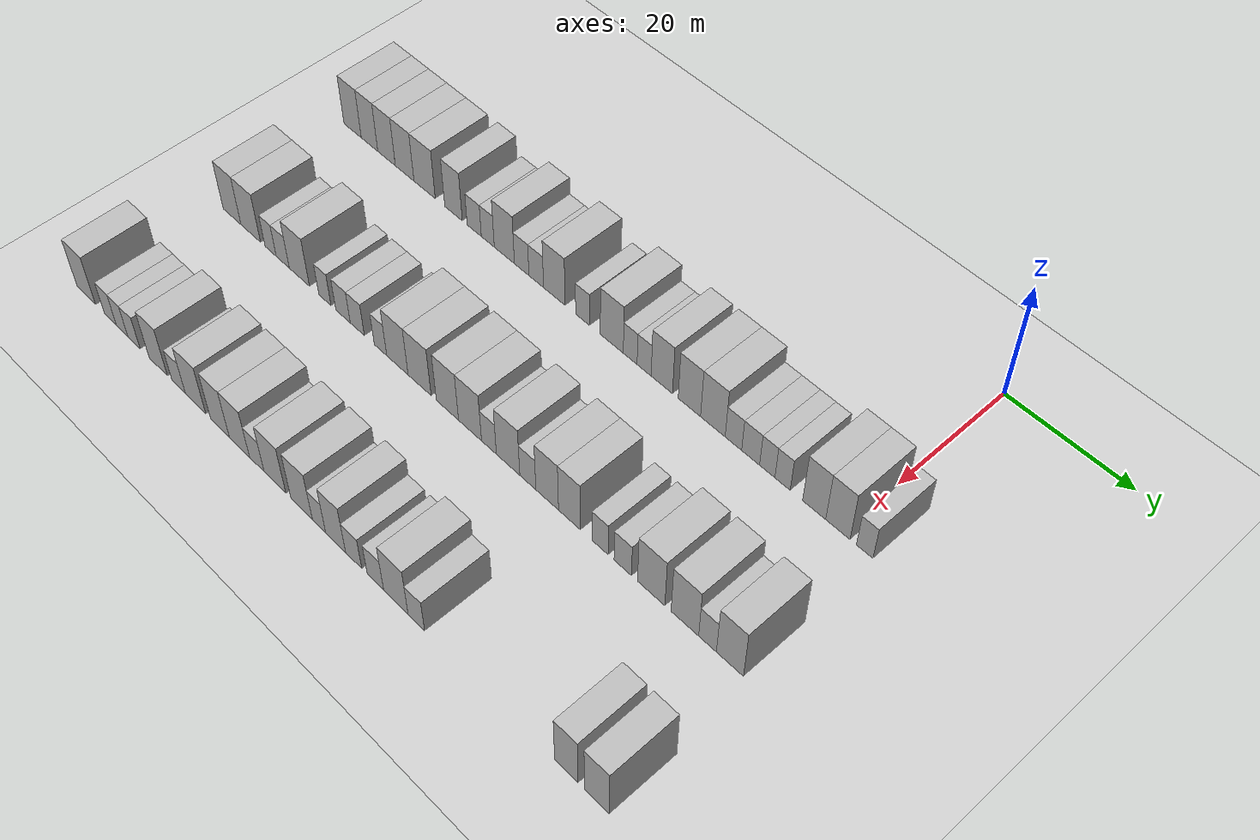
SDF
<sdf version="1.6">
 <world name="default">
  <include><name>ground_plane_1</name><uri>model://HANNAS_ground_plane</uri></include>
  <model name="building_63">
   <static>1</static>
   <pose>25.0000 -91.5826 0 0.000000 0.000000 0.000000</pose>
   <link name="link">
    <pose>0 0 4.50 0 0 0</pose>
    <collision name="collision"><geometry><box><size>10.0000 3.8632 9.0000</size></box></geometry></collision>
    <visual name="visual">
     <cast_shadows>0</cast_shadows>
     <geometry><box><size>10.0000 3.8632 9.0000</size></box></geometry>
     <material>
      <script>
       <uri>model://HANNAS_wall/materials/scripts</uri>
       <uri>model://HANNAS_wall/materials/textures</uri>
       <name>vrc/HANNAS_wall</name>
      </script>
     </material>
    </visual>
   </link>
  </model>
  <model name="building_64">
   <static>1</static>
   <pose>25.0000 -87.8321 0 0.000000 0.000000 0.000000</pose>
   <link name="link">
    <pose>0 0 4.50 0 0 0</pose>
    <collision name="collision"><geometry><box><size>10.0000 3.6378 9.0000</size></box></geometry></collision>
    <visual name="visual">
     <cast_shadows>0</cast_shadows>
     <geometry><box><size>10.0000 3.6378 9.0000</size></box></geometry>
     <material>
      <script>
       <uri>model://HANNAS_wall/materials/scripts</uri>
       <uri>model://HANNAS_wall/materials/textures</uri>
       <name>vrc/HANNAS_wall</name>
      </script>
     </material>
    </visual>
   </link>
  </model>
  <model name="building_65">
   <static>1</static>
   <pose>25.0000 -84.1062 0 0.000000 0.000000 0.000000</pose>
   <link name="link">
    <pose>0 0 4.50 0 0 0</pose>
    <collision name="collision"><geometry><box><size>10.0000 3.8140 9.0000</size></box></geometry></collision>
    <visual name="visual">
     <cast_shadows>0</cast_shadows>
     <geometry><box><size>10.0000 3.8140 9.0000</size></box></geometry>
     <material>
      <script>
       <uri>model://HANNAS_wall/materials/scripts</uri>
       <uri>model://HANNAS_wall/materials/textures</uri>
       <name>vrc/HANNAS_wall</name>
      </script>
     </material>
    </visual>
   </link>
  </model>
  <model name="building_66">
   <static>1</static>
   <pose>25.0000 -80.2050 0 0.000000 0.000000 0.000000</pose>
   <link name="link">
    <pose>0 0 4.50 0 0 0</pose>
    <collision name="collision"><geometry><box><size>10.0000 3.9883 9.0000</size></box></geometry></collision>
    <visual name="visual">
     <cast_shadows>0</cast_shadows>
     <geometry><box><size>10.0000 3.9883 9.0000</size></box></geometry>
     <material>
      <script>
       <uri>model://HANNAS_wall/materials/scripts</uri>
       <uri>model://HANNAS_wall/materials/textures</uri>
       <name>vrc/HANNAS_wall</name>
      </script>
     </material>
    </visual>
   </link>
  </model>
  <model name="building_67">
   <static>1</static>
   <pose>25.0000 -75.9671 0 0.000000 0.000000 0.000000</pose>
   <link name="link">
    <pose>0 0 4.50 0 0 0</pose>
    <collision name="collision"><geometry><box><size>10.0000 4.4875 9.0000</size></box></geometry></collision>
    <visual name="visual">
     <cast_shadows>0</cast_shadows>
     <geometry><box><size>10.0000 4.4875 9.0000</size></box></geometry>
     <material>
      <script>
       <uri>model://HANNAS_wall/materials/scripts</uri>
       <uri>model://HANNAS_wall/materials/textures</uri>
       <name>vrc/HANNAS_wall</name>
      </script>
     </material>
    </visual>
   </link>
  </model>
  <model name="building_68">
   <static>1</static>
   <pose>25.0000 -69.9114 0 0.000000 0.000000 0.000000</pose>
   <link name="link">
    <pose>0 0 4.50 0 0 0</pose>
    <collision name="collision"><geometry><box><size>10.0000 3.6240 9.0000</size></box></geometry></collision>
    <visual name="visual">
     <cast_shadows>0</cast_shadows>
     <geometry><box><size>10.0000 3.6240 9.0000</size></box></geometry>
     <material>
      <script>
       <uri>model://HANNAS_wall/materials/scripts</uri>
       <uri>model://HANNAS_wall/materials/textures</uri>
       <name>vrc/HANNAS_wall</name>
      </script>
     </material>
    </visual>
   </link>
  </model>
  <model name="building_69">
   <static>1</static>
   <pose>25.0000 -65.6644 0 0.000000 0.000000 0.000000</pose>
   <link name="link">
    <pose>0 0 3.00 0 0 0</pose>
    <collision name="collision"><geometry><box><size>10.0000 2.8700 6.0000</size></box></geometry></collision>
    <visual name="visual">
     <cast_shadows>0</cast_shadows>
     <geometry><box><size>10.0000 2.8700 6.0000</size></box></geometry>
     <material>
      <script>
       <uri>model://HANNAS_wall/materials/scripts</uri>
       <uri>model://HANNAS_wall/materials/textures</uri>
       <name>vrc/HANNAS_wall</name>
      </script>
     </material>
    </visual>
   </link>
  </model>
  <model name="building_70">
   <static>1</static>
   <pose>25.0000 -62.9235 0 0.000000 0.000000 0.000000</pose>
   <link name="link">
    <pose>0 0 3.00 0 0 0</pose>
    <collision name="collision"><geometry><box><size>10.0000 2.6117 6.0000</size></box></geometry></collision>
    <visual name="visual">
     <cast_shadows>0</cast_shadows>
     <geometry><box><size>10.0000 2.6117 6.0000</size></box></geometry>
     <material>
      <script>
       <uri>model://HANNAS_wall/materials/scripts</uri>
       <uri>model://HANNAS_wall/materials/textures</uri>
       <name>vrc/HANNAS_wall</name>
      </script>
     </material>
    </visual>
   </link>
  </model>
  <model name="building_71">
   <static>1</static>
   <pose>25.0000 -59.6170 0 0.000000 0.000000 0.000000</pose>
   <link name="link">
    <pose>0 0 4.50 0 0 0</pose>
    <collision name="collision"><geometry><box><size>10.0000 4.0014 9.0000</size></box></geometry></collision>
    <visual name="visual">
     <cast_shadows>0</cast_shadows>
     <geometry><box><size>10.0000 4.0014 9.0000</size></box></geometry>
     <material>
      <script>
       <uri>model://HANNAS_wall/materials/scripts</uri>
       <uri>model://HANNAS_wall/materials/textures</uri>
       <name>vrc/HANNAS_wall</name>
      </script>
     </material>
    </visual>
   </link>
  </model>
  <model name="building_72">
   <static>1</static>
   <pose>25.0000 -56.1926 0 0.000000 0.000000 0.000000</pose>
   <link name="link">
    <pose>0 0 3.00 0 0 0</pose>
    <collision name="collision"><geometry><box><size>10.0000 2.8475 6.0000</size></box></geometry></collision>
    <visual name="visual">
     <cast_shadows>0</cast_shadows>
     <geometry><box><size>10.0000 2.8475 6.0000</size></box></geometry>
     <material>
      <script>
       <uri>model://HANNAS_wall/materials/scripts</uri>
       <uri>model://HANNAS_wall/materials/textures</uri>
       <name>vrc/HANNAS_wall</name>
      </script>
     </material>
    </visual>
   </link>
  </model>
  <model name="building_73">
   <static>1</static>
   <pose>25.0000 -53.3509 0 0.000000 0.000000 0.000000</pose>
   <link name="link">
    <pose>0 0 3.00 0 0 0</pose>
    <collision name="collision"><geometry><box><size>10.0000 2.8359 6.0000</size></box></geometry></collision>
    <visual name="visual">
     <cast_shadows>0</cast_shadows>
     <geometry><box><size>10.0000 2.8359 6.0000</size></box></geometry>
     <material>
      <script>
       <uri>model://HANNAS_wall/materials/scripts</uri>
       <uri>model://HANNAS_wall/materials/textures</uri>
       <name>vrc/HANNAS_wall</name>
      </script>
     </material>
    </visual>
   </link>
  </model>
  <model name="building_74">
   <static>1</static>
   <pose>25.0000 -49.8692 0 0.000000 0.000000 0.000000</pose>
   <link name="link">
    <pose>0 0 4.50 0 0 0</pose>
    <collision name="collision"><geometry><box><size>10.0000 4.1274 9.0000</size></box></geometry></collision>
    <visual name="visual">
     <cast_shadows>0</cast_shadows>
     <geometry><box><size>10.0000 4.1274 9.0000</size></box></geometry>
     <material>
      <script>
       <uri>model://HANNAS_wall/materials/scripts</uri>
       <uri>model://HANNAS_wall/materials/textures</uri>
       <name>vrc/HANNAS_wall</name>
      </script>
     </material>
    </visual>
   </link>
  </model>
  <model name="building_75">
   <static>1</static>
   <pose>25.0000 -44.5020 0 0.000000 0.000000 0.000000</pose>
   <link name="link">
    <pose>0 0 3.00 0 0 0</pose>
    <collision name="collision"><geometry><box><size>10.0000 2.6070 6.0000</size></box></geometry></collision>
    <visual name="visual">
     <cast_shadows>0</cast_shadows>
     <geometry><box><size>10.0000 2.6070 6.0000</size></box></geometry>
     <material>
      <script>
       <uri>model://HANNAS_wall/materials/scripts</uri>
       <uri>model://HANNAS_wall/materials/textures</uri>
       <name>vrc/HANNAS_wall</name>
      </script>
     </material>
    </visual>
   </link>
  </model>
  <model name="building_76">
   <static>1</static>
   <pose>25.0000 -39.0857 0 0.000000 0.000000 0.000000</pose>
   <link name="link">
    <pose>0 0 4.50 0 0 0</pose>
    <collision name="collision"><geometry><box><size>10.0000 4.2257 9.0000</size></box></geometry></collision>
    <visual name="visual">
     <cast_shadows>0</cast_shadows>
     <geometry><box><size>10.0000 4.2257 9.0000</size></box></geometry>
     <material>
      <script>
       <uri>model://HANNAS_wall/materials/scripts</uri>
       <uri>model://HANNAS_wall/materials/textures</uri>
       <name>vrc/HANNAS_wall</name>
      </script>
     </material>
    </visual>
   </link>
  </model>
  <model name="building_77">
   <static>1</static>
   <pose>25.0000 -35.7250 0 0.000000 0.000000 0.000000</pose>
   <link name="link">
    <pose>0 0 3.00 0 0 0</pose>
    <collision name="collision"><geometry><box><size>10.0000 2.4957 6.0000</size></box></geometry></collision>
    <visual name="visual">
     <cast_shadows>0</cast_shadows>
     <geometry><box><size>10.0000 2.4957 6.0000</size></box></geometry>
     <material>
      <script>
       <uri>model://HANNAS_wall/materials/scripts</uri>
       <uri>model://HANNAS_wall/materials/textures</uri>
       <name>vrc/HANNAS_wall</name>
      </script>
     </material>
    </visual>
   </link>
  </model>
  <model name="building_78">
   <static>1</static>
   <pose>25.0000 -33.2164 0 0.000000 0.000000 0.000000</pose>
   <link name="link">
    <pose>0 0 3.00 0 0 0</pose>
    <collision name="collision"><geometry><box><size>10.0000 2.5214 6.0000</size></box></geometry></collision>
    <visual name="visual">
     <cast_shadows>0</cast_shadows>
     <geometry><box><size>10.0000 2.5214 6.0000</size></box></geometry>
     <material>
      <script>
       <uri>model://HANNAS_wall/materials/scripts</uri>
       <uri>model://HANNAS_wall/materials/textures</uri>
       <name>vrc/HANNAS_wall</name>
      </script>
     </material>
    </visual>
   </link>
  </model>
  <model name="building_79">
   <static>1</static>
   <pose>25.0000 -30.0578 0 0.000000 0.000000 0.000000</pose>
   <link name="link">
    <pose>0 0 4.50 0 0 0</pose>
    <collision name="collision"><geometry><box><size>10.0000 3.7959 9.0000</size></box></geometry></collision>
    <visual name="visual">
     <cast_shadows>0</cast_shadows>
     <geometry><box><size>10.0000 3.7959 9.0000</size></box></geometry>
     <material>
      <script>
       <uri>model://HANNAS_wall/materials/scripts</uri>
       <uri>model://HANNAS_wall/materials/textures</uri>
       <name>vrc/HANNAS_wall</name>
      </script>
     </material>
    </visual>
   </link>
  </model>
  <model name="building_80">
   <static>1</static>
   <pose>25.0000 -25.2141 0 0.000000 0.000000 0.000000</pose>
   <link name="link">
    <pose>0 0 4.50 0 0 0</pose>
    <collision name="collision"><geometry><box><size>10.0000 3.8916 9.0000</size></box></geometry></collision>
    <visual name="visual">
     <cast_shadows>0</cast_shadows>
     <geometry><box><size>10.0000 3.8916 9.0000</size></box></geometry>
     <material>
      <script>
       <uri>model://HANNAS_wall/materials/scripts</uri>
       <uri>model://HANNAS_wall/materials/textures</uri>
       <name>vrc/HANNAS_wall</name>
      </script>
     </material>
    </visual>
   </link>
  </model>
  <model name="building_81">
   <static>1</static>
   <pose>25.0000 -21.1624 0 0.000000 0.000000 0.000000</pose>
   <link name="link">
    <pose>0 0 4.50 0 0 0</pose>
    <collision name="collision"><geometry><box><size>10.0000 4.2118 9.0000</size></box></geometry></collision>
    <visual name="visual">
     <cast_shadows>0</cast_shadows>
     <geometry><box><size>10.0000 4.2118 9.0000</size></box></geometry>
     <material>
      <script>
       <uri>model://HANNAS_wall/materials/scripts</uri>
       <uri>model://HANNAS_wall/materials/textures</uri>
       <name>vrc/HANNAS_wall</name>
      </script>
     </material>
    </visual>
   </link>
  </model>
  <model name="building_82">
   <static>1</static>
   <pose>25.0000 -17.6665 0 0.000000 0.000000 0.000000</pose>
   <link name="link">
    <pose>0 0 3.00 0 0 0</pose>
    <collision name="collision"><geometry><box><size>10.0000 2.7800 6.0000</size></box></geometry></collision>
    <visual name="visual">
     <cast_shadows>0</cast_shadows>
     <geometry><box><size>10.0000 2.7800 6.0000</size></box></geometry>
     <material>
      <script>
       <uri>model://HANNAS_wall/materials/scripts</uri>
       <uri>model://HANNAS_wall/materials/textures</uri>
       <name>vrc/HANNAS_wall</name>
      </script>
     </material>
    </visual>
   </link>
  </model>
  <model name="building_83">
   <static>1</static>
   <pose>25.0000 -14.7814 0 0.000000 0.000000 0.000000</pose>
   <link name="link">
    <pose>0 0 3.00 0 0 0</pose>
    <collision name="collision"><geometry><box><size>10.0000 2.9902 6.0000</size></box></geometry></collision>
    <visual name="visual">
     <cast_shadows>0</cast_shadows>
     <geometry><box><size>10.0000 2.9902 6.0000</size></box></geometry>
     <material>
      <script>
       <uri>model://HANNAS_wall/materials/scripts</uri>
       <uri>model://HANNAS_wall/materials/textures</uri>
       <name>vrc/HANNAS_wall</name>
      </script>
     </material>
    </visual>
   </link>
  </model>
  <model name="building_84">
   <static>1</static>
   <pose>25.0000 -12.0228 0 0.000000 0.000000 0.000000</pose>
   <link name="link">
    <pose>0 0 3.00 0 0 0</pose>
    <collision name="collision"><geometry><box><size>10.0000 2.5269 6.0000</size></box></geometry></collision>
    <visual name="visual">
     <cast_shadows>0</cast_shadows>
     <geometry><box><size>10.0000 2.5269 6.0000</size></box></geometry>
     <material>
      <script>
       <uri>model://HANNAS_wall/materials/scripts</uri>
       <uri>model://HANNAS_wall/materials/textures</uri>
       <name>vrc/HANNAS_wall</name>
      </script>
     </material>
    </visual>
   </link>
  </model>
  <model name="building_85">
   <static>1</static>
   <pose>25.0000 -9.5092 0 0.000000 0.000000 0.000000</pose>
   <link name="link">
    <pose>0 0 3.00 0 0 0</pose>
    <collision name="collision"><geometry><box><size>10.0000 2.5003 6.0000</size></box></geometry></collision>
    <visual name="visual">
     <cast_shadows>0</cast_shadows>
     <geometry><box><size>10.0000 2.5003 6.0000</size></box></geometry>
     <material>
      <script>
       <uri>model://HANNAS_wall/materials/scripts</uri>
       <uri>model://HANNAS_wall/materials/textures</uri>
       <name>vrc/HANNAS_wall</name>
      </script>
     </material>
    </visual>
   </link>
  </model>
  <model name="building_86">
   <static>1</static>
   <pose>25.0000 -4.4101 0 0.000000 0.000000 0.000000</pose>
   <link name="link">
    <pose>0 0 4.50 0 0 0</pose>
    <collision name="collision"><geometry><box><size>10.0000 3.6980 9.0000</size></box></geometry></collision>
    <visual name="visual">
     <cast_shadows>0</cast_shadows>
     <geometry><box><size>10.0000 3.6980 9.0000</size></box></geometry>
     <material>
      <script>
       <uri>model://HANNAS_wall/materials/scripts</uri>
       <uri>model://HANNAS_wall/materials/textures</uri>
       <name>vrc/HANNAS_wall</name>
      </script>
     </material>
    </visual>
   </link>
  </model>
  <model name="building_87">
   <static>1</static>
   <pose>25.0000 -0.6515 0 0.000000 0.000000 0.000000</pose>
   <link name="link">
    <pose>0 0 4.50 0 0 0</pose>
    <collision name="collision"><geometry><box><size>10.0000 3.8193 9.0000</size></box></geometry></collision>
    <visual name="visual">
     <cast_shadows>0</cast_shadows>
     <geometry><box><size>10.0000 3.8193 9.0000</size></box></geometry>
     <material>
      <script>
       <uri>model://HANNAS_wall/materials/scripts</uri>
       <uri>model://HANNAS_wall/materials/textures</uri>
       <name>vrc/HANNAS_wall</name>
      </script>
     </material>
    </visual>
   </link>
  </model>
  <model name="building_88">
   <static>1</static>
   <pose>25.0000 3.5405 0 0.000000 0.000000 0.000000</pose>
   <link name="link">
    <pose>0 0 3.00 0 0 0</pose>
    <collision name="collision"><geometry><box><size>10.0000 2.5646 6.0000</size></box></geometry></collision>
    <visual name="visual">
     <cast_shadows>0</cast_shadows>
     <geometry><box><size>10.0000 2.5646 6.0000</size></box></geometry>
     <material>
      <script>
       <uri>model://HANNAS_wall/materials/scripts</uri>
       <uri>model://HANNAS_wall/materials/textures</uri>
       <name>vrc/HANNAS_wall</name>
      </script>
     </material>
    </visual>
   </link>
  </model>
  <model name="building_261">
   <static>1</static>
   <pose>47.0000 -89.8196 0 0.000000 0.000000 0.000000</pose>
   <link name="link">
    <pose>0 0 4.50 0 0 0</pose>
    <collision name="collision"><geometry><box><size>10.0000 3.9958 9.0000</size></box></geometry></collision>
    <visual name="visual">
     <cast_shadows>0</cast_shadows>
     <geometry><box><size>10.0000 3.9958 9.0000</size></box></geometry>
     <material>
      <script>
       <uri>model://HANNAS_wall/materials/scripts</uri>
       <uri>model://HANNAS_wall/materials/textures</uri>
       <name>vrc/HANNAS_wall</name>
      </script>
     </material>
    </visual>
   </link>
  </model>
  <model name="building_262">
   <static>1</static>
   <pose>47.0000 -85.6539 0 0.000000 0.000000 0.000000</pose>
   <link name="link">
    <pose>0 0 4.50 0 0 0</pose>
    <collision name="collision"><geometry><box><size>10.0000 4.3356 9.0000</size></box></geometry></collision>
    <visual name="visual">
     <cast_shadows>0</cast_shadows>
     <geometry><box><size>10.0000 4.3356 9.0000</size></box></geometry>
     <material>
      <script>
       <uri>model://HANNAS_wall/materials/scripts</uri>
       <uri>model://HANNAS_wall/materials/textures</uri>
       <name>vrc/HANNAS_wall</name>
      </script>
     </material>
    </visual>
   </link>
  </model>
  <model name="building_263">
   <static>1</static>
   <pose>47.0000 -81.2703 0 0.000000 0.000000 0.000000</pose>
   <link name="link">
    <pose>0 0 3.00 0 0 0</pose>
    <collision name="collision"><geometry><box><size>10.0000 2.4315 6.0000</size></box></geometry></collision>
    <visual name="visual">
     <cast_shadows>0</cast_shadows>
     <geometry><box><size>10.0000 2.4315 6.0000</size></box></geometry>
     <material>
      <script>
       <uri>model://HANNAS_wall/materials/scripts</uri>
       <uri>model://HANNAS_wall/materials/textures</uri>
       <name>vrc/HANNAS_wall</name>
      </script>
     </material>
    </visual>
   </link>
  </model>
  <model name="building_264">
   <static>1</static>
   <pose>47.0000 -78.6425 0 0.000000 0.000000 0.000000</pose>
   <link name="link">
    <pose>0 0 3.00 0 0 0</pose>
    <collision name="collision"><geometry><box><size>10.0000 2.8242 6.0000</size></box></geometry></collision>
    <visual name="visual">
     <cast_shadows>0</cast_shadows>
     <geometry><box><size>10.0000 2.8242 6.0000</size></box></geometry>
     <material>
      <script>
       <uri>model://HANNAS_wall/materials/scripts</uri>
       <uri>model://HANNAS_wall/materials/textures</uri>
       <name>vrc/HANNAS_wall</name>
      </script>
     </material>
    </visual>
   </link>
  </model>
  <model name="building_265">
   <static>1</static>
   <pose>47.0000 -75.0842 0 0.000000 0.000000 0.000000</pose>
   <link name="link">
    <pose>0 0 4.50 0 0 0</pose>
    <collision name="collision"><geometry><box><size>10.0000 4.2925 9.0000</size></box></geometry></collision>
    <visual name="visual">
     <cast_shadows>0</cast_shadows>
     <geometry><box><size>10.0000 4.2925 9.0000</size></box></geometry>
     <material>
      <script>
       <uri>model://HANNAS_wall/materials/scripts</uri>
       <uri>model://HANNAS_wall/materials/textures</uri>
       <name>vrc/HANNAS_wall</name>
      </script>
     </material>
    </visual>
   </link>
  </model>
  <model name="building_266">
   <static>1</static>
   <pose>47.0000 -69.6702 0 0.000000 0.000000 0.000000</pose>
   <link name="link">
    <pose>0 0 3.00 0 0 0</pose>
    <collision name="collision"><geometry><box><size>10.0000 2.5355 6.0000</size></box></geometry></collision>
    <visual name="visual">
     <cast_shadows>0</cast_shadows>
     <geometry><box><size>10.0000 2.5355 6.0000</size></box></geometry>
     <material>
      <script>
       <uri>model://HANNAS_wall/materials/scripts</uri>
       <uri>model://HANNAS_wall/materials/textures</uri>
       <name>vrc/HANNAS_wall</name>
      </script>
     </material>
    </visual>
   </link>
  </model>
  <model name="building_267">
   <static>1</static>
   <pose>47.0000 -65.9192 0 0.000000 0.000000 0.000000</pose>
   <link name="link">
    <pose>0 0 3.00 0 0 0</pose>
    <collision name="collision"><geometry><box><size>10.0000 2.9664 6.0000</size></box></geometry></collision>
    <visual name="visual">
     <cast_shadows>0</cast_shadows>
     <geometry><box><size>10.0000 2.9664 6.0000</size></box></geometry>
     <material>
      <script>
       <uri>model://HANNAS_wall/materials/scripts</uri>
       <uri>model://HANNAS_wall/materials/textures</uri>
       <name>vrc/HANNAS_wall</name>
      </script>
     </material>
    </visual>
   </link>
  </model>
  <model name="building_268">
   <static>1</static>
   <pose>47.0000 -63.0057 0 0.000000 0.000000 0.000000</pose>
   <link name="link">
    <pose>0 0 3.00 0 0 0</pose>
    <collision name="collision"><geometry><box><size>10.0000 2.8607 6.0000</size></box></geometry></collision>
    <visual name="visual">
     <cast_shadows>0</cast_shadows>
     <geometry><box><size>10.0000 2.8607 6.0000</size></box></geometry>
     <material>
      <script>
       <uri>model://HANNAS_wall/materials/scripts</uri>
       <uri>model://HANNAS_wall/materials/textures</uri>
       <name>vrc/HANNAS_wall</name>
      </script>
     </material>
    </visual>
   </link>
  </model>
  <model name="building_269">
   <static>1</static>
   <pose>47.0000 -58.3316 0 0.000000 0.000000 0.000000</pose>
   <link name="link">
    <pose>0 0 3.00 0 0 0</pose>
    <collision name="collision"><geometry><box><size>10.0000 2.4875 6.0000</size></box></geometry></collision>
    <visual name="visual">
     <cast_shadows>0</cast_shadows>
     <geometry><box><size>10.0000 2.4875 6.0000</size></box></geometry>
     <material>
      <script>
       <uri>model://HANNAS_wall/materials/scripts</uri>
       <uri>model://HANNAS_wall/materials/textures</uri>
       <name>vrc/HANNAS_wall</name>
      </script>
     </material>
    </visual>
   </link>
  </model>
  <model name="building_270">
   <static>1</static>
   <pose>47.0000 -54.9782 0 0.000000 0.000000 0.000000</pose>
   <link name="link">
    <pose>0 0 4.50 0 0 0</pose>
    <collision name="collision"><geometry><box><size>10.0000 4.2192 9.0000</size></box></geometry></collision>
    <visual name="visual">
     <cast_shadows>0</cast_shadows>
     <geometry><box><size>10.0000 4.2192 9.0000</size></box></geometry>
     <material>
      <script>
       <uri>model://HANNAS_wall/materials/scripts</uri>
       <uri>model://HANNAS_wall/materials/textures</uri>
       <name>vrc/HANNAS_wall</name>
      </script>
     </material>
    </visual>
   </link>
  </model>
  <model name="building_271">
   <static>1</static>
   <pose>47.0000 -50.6393 0 0.000000 0.000000 0.000000</pose>
   <link name="link">
    <pose>0 0 4.50 0 0 0</pose>
    <collision name="collision"><geometry><box><size>10.0000 4.4588 9.0000</size></box></geometry></collision>
    <visual name="visual">
     <cast_shadows>0</cast_shadows>
     <geometry><box><size>10.0000 4.4588 9.0000</size></box></geometry>
     <material>
      <script>
       <uri>model://HANNAS_wall/materials/scripts</uri>
       <uri>model://HANNAS_wall/materials/textures</uri>
       <name>vrc/HANNAS_wall</name>
      </script>
     </material>
    </visual>
   </link>
  </model>
  <model name="building_272">
   <static>1</static>
   <pose>47.0000 -45.2971 0 0.000000 0.000000 0.000000</pose>
   <link name="link">
    <pose>0 0 4.50 0 0 0</pose>
    <collision name="collision"><geometry><box><size>10.0000 4.2255 9.0000</size></box></geometry></collision>
    <visual name="visual">
     <cast_shadows>0</cast_shadows>
     <geometry><box><size>10.0000 4.2255 9.0000</size></box></geometry>
     <material>
      <script>
       <uri>model://HANNAS_wall/materials/scripts</uri>
       <uri>model://HANNAS_wall/materials/textures</uri>
       <name>vrc/HANNAS_wall</name>
      </script>
     </material>
    </visual>
   </link>
  </model>
  <model name="building_273">
   <static>1</static>
   <pose>47.0000 -41.0392 0 0.000000 0.000000 0.000000</pose>
   <link name="link">
    <pose>0 0 4.50 0 0 0</pose>
    <collision name="collision"><geometry><box><size>10.0000 4.2903 9.0000</size></box></geometry></collision>
    <visual name="visual">
     <cast_shadows>0</cast_shadows>
     <geometry><box><size>10.0000 4.2903 9.0000</size></box></geometry>
     <material>
      <script>
       <uri>model://HANNAS_wall/materials/scripts</uri>
       <uri>model://HANNAS_wall/materials/textures</uri>
       <name>vrc/HANNAS_wall</name>
      </script>
     </material>
    </visual>
   </link>
  </model>
  <model name="building_274">
   <static>1</static>
   <pose>47.0000 -37.5330 0 0.000000 0.000000 0.000000</pose>
   <link name="link">
    <pose>0 0 3.00 0 0 0</pose>
    <collision name="collision"><geometry><box><size>10.0000 2.7222 6.0000</size></box></geometry></collision>
    <visual name="visual">
     <cast_shadows>0</cast_shadows>
     <geometry><box><size>10.0000 2.7222 6.0000</size></box></geometry>
     <material>
      <script>
       <uri>model://HANNAS_wall/materials/scripts</uri>
       <uri>model://HANNAS_wall/materials/textures</uri>
       <name>vrc/HANNAS_wall</name>
      </script>
     </material>
    </visual>
   </link>
  </model>
  <model name="building_275">
   <static>1</static>
   <pose>47.0000 -34.0485 0 0.000000 0.000000 0.000000</pose>
   <link name="link">
    <pose>0 0 4.50 0 0 0</pose>
    <collision name="collision"><geometry><box><size>10.0000 4.2469 9.0000</size></box></geometry></collision>
    <visual name="visual">
     <cast_shadows>0</cast_shadows>
     <geometry><box><size>10.0000 4.2469 9.0000</size></box></geometry>
     <material>
      <script>
       <uri>model://HANNAS_wall/materials/scripts</uri>
       <uri>model://HANNAS_wall/materials/textures</uri>
       <name>vrc/HANNAS_wall</name>
      </script>
     </material>
    </visual>
   </link>
  </model>
  <model name="building_276">
   <static>1</static>
   <pose>47.0000 -30.4924 0 0.000000 0.000000 0.000000</pose>
   <link name="link">
    <pose>0 0 3.00 0 0 0</pose>
    <collision name="collision"><geometry><box><size>10.0000 2.8653 6.0000</size></box></geometry></collision>
    <visual name="visual">
     <cast_shadows>0</cast_shadows>
     <geometry><box><size>10.0000 2.8653 6.0000</size></box></geometry>
     <material>
      <script>
       <uri>model://HANNAS_wall/materials/scripts</uri>
       <uri>model://HANNAS_wall/materials/textures</uri>
       <name>vrc/HANNAS_wall</name>
      </script>
     </material>
    </visual>
   </link>
  </model>
  <model name="building_277">
   <static>1</static>
   <pose>47.0000 -27.0646 0 0.000000 0.000000 0.000000</pose>
   <link name="link">
    <pose>0 0 4.50 0 0 0</pose>
    <collision name="collision"><geometry><box><size>10.0000 3.9904 9.0000</size></box></geometry></collision>
    <visual name="visual">
     <cast_shadows>0</cast_shadows>
     <geometry><box><size>10.0000 3.9904 9.0000</size></box></geometry>
     <material>
      <script>
       <uri>model://HANNAS_wall/materials/scripts</uri>
       <uri>model://HANNAS_wall/materials/textures</uri>
       <name>vrc/HANNAS_wall</name>
      </script>
     </material>
    </visual>
   </link>
  </model>
  <model name="building_278">
   <static>1</static>
   <pose>47.0000 -23.1747 0 0.000000 0.000000 0.000000</pose>
   <link name="link">
    <pose>0 0 4.50 0 0 0</pose>
    <collision name="collision"><geometry><box><size>10.0000 3.7893 9.0000</size></box></geometry></collision>
    <visual name="visual">
     <cast_shadows>0</cast_shadows>
     <geometry><box><size>10.0000 3.7893 9.0000</size></box></geometry>
     <material>
      <script>
       <uri>model://HANNAS_wall/materials/scripts</uri>
       <uri>model://HANNAS_wall/materials/textures</uri>
       <name>vrc/HANNAS_wall</name>
      </script>
     </material>
    </visual>
   </link>
  </model>
  <model name="building_279">
   <static>1</static>
   <pose>47.0000 -17.9212 0 0.000000 0.000000 0.000000</pose>
   <link name="link">
    <pose>0 0 3.00 0 0 0</pose>
    <collision name="collision"><geometry><box><size>10.0000 2.7177 6.0000</size></box></geometry></collision>
    <visual name="visual">
     <cast_shadows>0</cast_shadows>
     <geometry><box><size>10.0000 2.7177 6.0000</size></box></geometry>
     <material>
      <script>
       <uri>model://HANNAS_wall/materials/scripts</uri>
       <uri>model://HANNAS_wall/materials/textures</uri>
       <name>vrc/HANNAS_wall</name>
      </script>
     </material>
    </visual>
   </link>
  </model>
  <model name="building_280">
   <static>1</static>
   <pose>47.0000 -14.1083 0 0.000000 0.000000 0.000000</pose>
   <link name="link">
    <pose>0 0 3.00 0 0 0</pose>
    <collision name="collision"><geometry><box><size>10.0000 2.9080 6.0000</size></box></geometry></collision>
    <visual name="visual">
     <cast_shadows>0</cast_shadows>
     <geometry><box><size>10.0000 2.9080 6.0000</size></box></geometry>
     <material>
      <script>
       <uri>model://HANNAS_wall/materials/scripts</uri>
       <uri>model://HANNAS_wall/materials/textures</uri>
       <name>vrc/HANNAS_wall</name>
      </script>
     </material>
    </visual>
   </link>
  </model>
  <model name="building_281">
   <static>1</static>
   <pose>47.0000 -9.4201 0 0.000000 0.000000 0.000000</pose>
   <link name="link">
    <pose>0 0 4.50 0 0 0</pose>
    <collision name="collision"><geometry><box><size>10.0000 4.4684 9.0000</size></box></geometry></collision>
    <visual name="visual">
     <cast_shadows>0</cast_shadows>
     <geometry><box><size>10.0000 4.4684 9.0000</size></box></geometry>
     <material>
      <script>
       <uri>model://HANNAS_wall/materials/scripts</uri>
       <uri>model://HANNAS_wall/materials/textures</uri>
       <name>vrc/HANNAS_wall</name>
      </script>
     </material>
    </visual>
   </link>
  </model>
  <model name="building_282">
   <static>1</static>
   <pose>47.0000 -3.9870 0 0.000000 0.000000 0.000000</pose>
   <link name="link">
    <pose>0 0 4.50 0 0 0</pose>
    <collision name="collision"><geometry><box><size>10.0000 4.3979 9.0000</size></box></geometry></collision>
    <visual name="visual">
     <cast_shadows>0</cast_shadows>
     <geometry><box><size>10.0000 4.3979 9.0000</size></box></geometry>
     <material>
      <script>
       <uri>model://HANNAS_wall/materials/scripts</uri>
       <uri>model://HANNAS_wall/materials/textures</uri>
       <name>vrc/HANNAS_wall</name>
      </script>
     </material>
    </visual>
   </link>
  </model>
  <model name="building_283">
   <static>1</static>
   <pose>47.0000 -0.3960 0 0.000000 0.000000 0.000000</pose>
   <link name="link">
    <pose>0 0 3.00 0 0 0</pose>
    <collision name="collision"><geometry><box><size>10.0000 2.7841 6.0000</size></box></geometry></collision>
    <visual name="visual">
     <cast_shadows>0</cast_shadows>
     <geometry><box><size>10.0000 2.7841 6.0000</size></box></geometry>
     <material>
      <script>
       <uri>model://HANNAS_wall/materials/scripts</uri>
       <uri>model://HANNAS_wall/materials/textures</uri>
       <name>vrc/HANNAS_wall</name>
      </script>
     </material>
    </visual>
   </link>
  </model>
  <model name="building_284">
   <static>1</static>
   <pose>47.0000 3.0926 0 0.000000 0.000000 0.000000</pose>
   <link name="link">
    <pose>0 0 4.50 0 0 0</pose>
    <collision name="collision"><geometry><box><size>10.0000 4.1931 9.0000</size></box></geometry></collision>
    <visual name="visual">
     <cast_shadows>0</cast_shadows>
     <geometry><box><size>10.0000 4.1931 9.0000</size></box></geometry>
     <material>
      <script>
       <uri>model://HANNAS_wall/materials/scripts</uri>
       <uri>model://HANNAS_wall/materials/textures</uri>
       <name>vrc/HANNAS_wall</name>
      </script>
     </material>
    </visual>
   </link>
  </model>
  <model name="building_453">
   <static>1</static>
   <pose>69.0000 -91.4556 0 0.000000 0.000000 0.000000</pose>
   <link name="link">
    <pose>0 0 4.50 0 0 0</pose>
    <collision name="collision"><geometry><box><size>10.0000 4.2592 9.0000</size></box></geometry></collision>
    <visual name="visual">
     <cast_shadows>0</cast_shadows>
     <geometry><box><size>10.0000 4.2592 9.0000</size></box></geometry>
     <material>
      <script>
       <uri>model://HANNAS_wall/materials/scripts</uri>
       <uri>model://HANNAS_wall/materials/textures</uri>
       <name>vrc/HANNAS_wall</name>
      </script>
     </material>
    </visual>
   </link>
  </model>
  <model name="building_454">
   <static>1</static>
   <pose>69.0000 -85.9478 0 0.000000 0.000000 0.000000</pose>
   <link name="link">
    <pose>0 0 3.00 0 0 0</pose>
    <collision name="collision"><geometry><box><size>10.0000 2.7563 6.0000</size></box></geometry></collision>
    <visual name="visual">
     <cast_shadows>0</cast_shadows>
     <geometry><box><size>10.0000 2.7563 6.0000</size></box></geometry>
     <material>
      <script>
       <uri>model://HANNAS_wall/materials/scripts</uri>
       <uri>model://HANNAS_wall/materials/textures</uri>
       <name>vrc/HANNAS_wall</name>
      </script>
     </material>
    </visual>
   </link>
  </model>
  <model name="building_455">
   <static>1</static>
   <pose>69.0000 -83.2926 0 0.000000 0.000000 0.000000</pose>
   <link name="link">
    <pose>0 0 3.00 0 0 0</pose>
    <collision name="collision"><geometry><box><size>10.0000 2.5541 6.0000</size></box></geometry></collision>
    <visual name="visual">
     <cast_shadows>0</cast_shadows>
     <geometry><box><size>10.0000 2.5541 6.0000</size></box></geometry>
     <material>
      <script>
       <uri>model://HANNAS_wall/materials/scripts</uri>
       <uri>model://HANNAS_wall/materials/textures</uri>
       <name>vrc/HANNAS_wall</name>
      </script>
     </material>
    </visual>
   </link>
  </model>
  <model name="building_456">
   <static>1</static>
   <pose>69.0000 -80.6539 0 0.000000 0.000000 0.000000</pose>
   <link name="link">
    <pose>0 0 3.00 0 0 0</pose>
    <collision name="collision"><geometry><box><size>10.0000 2.7233 6.0000</size></box></geometry></collision>
    <visual name="visual">
     <cast_shadows>0</cast_shadows>
     <geometry><box><size>10.0000 2.7233 6.0000</size></box></geometry>
     <material>
      <script>
       <uri>model://HANNAS_wall/materials/scripts</uri>
       <uri>model://HANNAS_wall/materials/textures</uri>
       <name>vrc/HANNAS_wall</name>
      </script>
     </material>
    </visual>
   </link>
  </model>
  <model name="building_457">
   <static>1</static>
   <pose>69.0000 -75.3205 0 0.000000 0.000000 0.000000</pose>
   <link name="link">
    <pose>0 0 4.50 0 0 0</pose>
    <collision name="collision"><geometry><box><size>10.0000 3.9436 9.0000</size></box></geometry></collision>
    <visual name="visual">
     <cast_shadows>0</cast_shadows>
     <geometry><box><size>10.0000 3.9436 9.0000</size></box></geometry>
     <material>
      <script>
       <uri>model://HANNAS_wall/materials/scripts</uri>
       <uri>model://HANNAS_wall/materials/textures</uri>
       <name>vrc/HANNAS_wall</name>
      </script>
     </material>
    </visual>
   </link>
  </model>
  <model name="building_458">
   <static>1</static>
   <pose>69.0000 -70.9180 0 0.000000 0.000000 0.000000</pose>
   <link name="link">
    <pose>0 0 3.00 0 0 0</pose>
    <collision name="collision"><geometry><box><size>10.0000 2.8612 6.0000</size></box></geometry></collision>
    <visual name="visual">
     <cast_shadows>0</cast_shadows>
     <geometry><box><size>10.0000 2.8612 6.0000</size></box></geometry>
     <material>
      <script>
       <uri>model://HANNAS_wall/materials/scripts</uri>
       <uri>model://HANNAS_wall/materials/textures</uri>
       <name>vrc/HANNAS_wall</name>
      </script>
     </material>
    </visual>
   </link>
  </model>
  <model name="building_459">
   <static>1</static>
   <pose>69.0000 -67.3473 0 0.000000 0.000000 0.000000</pose>
   <link name="link">
    <pose>0 0 4.50 0 0 0</pose>
    <collision name="collision"><geometry><box><size>10.0000 4.2803 9.0000</size></box></geometry></collision>
    <visual name="visual">
     <cast_shadows>0</cast_shadows>
     <geometry><box><size>10.0000 4.2803 9.0000</size></box></geometry>
     <material>
      <script>
       <uri>model://HANNAS_wall/materials/scripts</uri>
       <uri>model://HANNAS_wall/materials/textures</uri>
       <name>vrc/HANNAS_wall</name>
      </script>
     </material>
    </visual>
   </link>
  </model>
  <model name="building_460">
   <static>1</static>
   <pose>69.0000 -62.2696 0 0.000000 0.000000 0.000000</pose>
   <link name="link">
    <pose>0 0 4.50 0 0 0</pose>
    <collision name="collision"><geometry><box><size>10.0000 3.8750 9.0000</size></box></geometry></collision>
    <visual name="visual">
     <cast_shadows>0</cast_shadows>
     <geometry><box><size>10.0000 3.8750 9.0000</size></box></geometry>
     <material>
      <script>
       <uri>model://HANNAS_wall/materials/scripts</uri>
       <uri>model://HANNAS_wall/materials/textures</uri>
       <name>vrc/HANNAS_wall</name>
      </script>
     </material>
    </visual>
   </link>
  </model>
  <model name="building_461">
   <static>1</static>
   <pose>69.0000 -58.2773 0 0.000000 0.000000 0.000000</pose>
   <link name="link">
    <pose>0 0 4.50 0 0 0</pose>
    <collision name="collision"><geometry><box><size>10.0000 4.1096 9.0000</size></box></geometry></collision>
    <visual name="visual">
     <cast_shadows>0</cast_shadows>
     <geometry><box><size>10.0000 4.1096 9.0000</size></box></geometry>
     <material>
      <script>
       <uri>model://HANNAS_wall/materials/scripts</uri>
       <uri>model://HANNAS_wall/materials/textures</uri>
       <name>vrc/HANNAS_wall</name>
      </script>
     </material>
    </visual>
   </link>
  </model>
  <model name="building_462">
   <static>1</static>
   <pose>69.0000 -54.7621 0 0.000000 0.000000 0.000000</pose>
   <link name="link">
    <pose>0 0 3.00 0 0 0</pose>
    <collision name="collision"><geometry><box><size>10.0000 2.9209 6.0000</size></box></geometry></collision>
    <visual name="visual">
     <cast_shadows>0</cast_shadows>
     <geometry><box><size>10.0000 2.9209 6.0000</size></box></geometry>
     <material>
      <script>
       <uri>model://HANNAS_wall/materials/scripts</uri>
       <uri>model://HANNAS_wall/materials/textures</uri>
       <name>vrc/HANNAS_wall</name>
      </script>
     </material>
    </visual>
   </link>
  </model>
  <model name="building_463">
   <static>1</static>
   <pose>69.0000 -51.1682 0 0.000000 0.000000 0.000000</pose>
   <link name="link">
    <pose>0 0 4.50 0 0 0</pose>
    <collision name="collision"><geometry><box><size>10.0000 4.2669 9.0000</size></box></geometry></collision>
    <visual name="visual">
     <cast_shadows>0</cast_shadows>
     <geometry><box><size>10.0000 4.2669 9.0000</size></box></geometry>
     <material>
      <script>
       <uri>model://HANNAS_wall/materials/scripts</uri>
       <uri>model://HANNAS_wall/materials/textures</uri>
       <name>vrc/HANNAS_wall</name>
      </script>
     </material>
    </visual>
   </link>
  </model>
  <model name="building_464">
   <static>1</static>
   <pose>69.0000 -45.9624 0 0.000000 0.000000 0.000000</pose>
   <link name="link">
    <pose>0 0 4.50 0 0 0</pose>
    <collision name="collision"><geometry><box><size>10.0000 4.1447 9.0000</size></box></geometry></collision>
    <visual name="visual">
     <cast_shadows>0</cast_shadows>
     <geometry><box><size>10.0000 4.1447 9.0000</size></box></geometry>
     <material>
      <script>
       <uri>model://HANNAS_wall/materials/scripts</uri>
       <uri>model://HANNAS_wall/materials/textures</uri>
       <name>vrc/HANNAS_wall</name>
      </script>
     </material>
    </visual>
   </link>
  </model>
  <model name="building_465">
   <static>1</static>
   <pose>69.0000 -42.6324 0 0.000000 0.000000 0.000000</pose>
   <link name="link">
    <pose>0 0 3.00 0 0 0</pose>
    <collision name="collision"><geometry><box><size>10.0000 2.5153 6.0000</size></box></geometry></collision>
    <visual name="visual">
     <cast_shadows>0</cast_shadows>
     <geometry><box><size>10.0000 2.5153 6.0000</size></box></geometry>
     <material>
      <script>
       <uri>model://HANNAS_wall/materials/scripts</uri>
       <uri>model://HANNAS_wall/materials/textures</uri>
       <name>vrc/HANNAS_wall</name>
      </script>
     </material>
    </visual>
   </link>
  </model>
  <model name="building_466">
   <static>1</static>
   <pose>69.0000 -39.4976 0 0.000000 0.000000 0.000000</pose>
   <link name="link">
    <pose>0 0 4.50 0 0 0</pose>
    <collision name="collision"><geometry><box><size>10.0000 3.7543 9.0000</size></box></geometry></collision>
    <visual name="visual">
     <cast_shadows>0</cast_shadows>
     <geometry><box><size>10.0000 3.7543 9.0000</size></box></geometry>
     <material>
      <script>
       <uri>model://HANNAS_wall/materials/scripts</uri>
       <uri>model://HANNAS_wall/materials/textures</uri>
       <name>vrc/HANNAS_wall</name>
      </script>
     </material>
    </visual>
   </link>
  </model>
  <model name="building_467">
   <static>1</static>
   <pose>69.0000 -36.1339 0 0.000000 0.000000 0.000000</pose>
   <link name="link">
    <pose>0 0 3.00 0 0 0</pose>
    <collision name="collision"><geometry><box><size>10.0000 2.9730 6.0000</size></box></geometry></collision>
    <visual name="visual">
     <cast_shadows>0</cast_shadows>
     <geometry><box><size>10.0000 2.9730 6.0000</size></box></geometry>
     <material>
      <script>
       <uri>model://HANNAS_wall/materials/scripts</uri>
       <uri>model://HANNAS_wall/materials/textures</uri>
       <name>vrc/HANNAS_wall</name>
      </script>
     </material>
    </visual>
   </link>
  </model>
  <model name="building_468">
   <static>1</static>
   <pose>69.0000 -32.1517 0 0.000000 0.000000 0.000000</pose>
   <link name="link">
    <pose>0 0 3.00 0 0 0</pose>
    <collision name="collision"><geometry><box><size>10.0000 2.9915 6.0000</size></box></geometry></collision>
    <visual name="visual">
     <cast_shadows>0</cast_shadows>
     <geometry><box><size>10.0000 2.9915 6.0000</size></box></geometry>
     <material>
      <script>
       <uri>model://HANNAS_wall/materials/scripts</uri>
       <uri>model://HANNAS_wall/materials/textures</uri>
       <name>vrc/HANNAS_wall</name>
      </script>
     </material>
    </visual>
   </link>
  </model>
  <model name="building_469">
   <static>1</static>
   <pose>69.0000 -28.4690 0 0.000000 0.000000 0.000000</pose>
   <link name="link">
    <pose>0 0 4.50 0 0 0</pose>
    <collision name="collision"><geometry><box><size>10.0000 4.3738 9.0000</size></box></geometry></collision>
    <visual name="visual">
     <cast_shadows>0</cast_shadows>
     <geometry><box><size>10.0000 4.3738 9.0000</size></box></geometry>
     <material>
      <script>
       <uri>model://HANNAS_wall/materials/scripts</uri>
       <uri>model://HANNAS_wall/materials/textures</uri>
       <name>vrc/HANNAS_wall</name>
      </script>
     </material>
    </visual>
   </link>
  </model>
  <model name="building_470">
   <static>1</static>
   <pose>69.0000 -24.8319 0 0.000000 0.000000 0.000000</pose>
   <link name="link">
    <pose>0 0 3.00 0 0 0</pose>
    <collision name="collision"><geometry><box><size>10.0000 2.9002 6.0000</size></box></geometry></collision>
    <visual name="visual">
     <cast_shadows>0</cast_shadows>
     <geometry><box><size>10.0000 2.9002 6.0000</size></box></geometry>
     <material>
      <script>
       <uri>model://HANNAS_wall/materials/scripts</uri>
       <uri>model://HANNAS_wall/materials/textures</uri>
       <name>vrc/HANNAS_wall</name>
      </script>
     </material>
    </visual>
   </link>
  </model>
  <model name="building_471">
   <static>1</static>
   <pose>69.0000 0.1345 0 0.000000 0.000000 0.000000</pose>
   <link name="link">
    <pose>0 0 4.50 0 0 0</pose>
    <collision name="collision"><geometry><box><size>10.0000 3.6775 9.0000</size></box></geometry></collision>
    <visual name="visual">
     <cast_shadows>0</cast_shadows>
     <geometry><box><size>10.0000 3.6775 9.0000</size></box></geometry>
     <material>
      <script>
       <uri>model://HANNAS_wall/materials/scripts</uri>
       <uri>model://HANNAS_wall/materials/textures</uri>
       <name>vrc/HANNAS_wall</name>
      </script>
     </material>
    </visual>
   </link>
  </model>
  <model name="building_472">
   <static>1</static>
   <pose>69.0000 4.8861 0 0.000000 0.000000 0.000000</pose>
   <link name="link">
    <pose>0 0 4.50 0 0 0</pose>
    <collision name="collision"><geometry><box><size>10.0000 3.8257 9.0000</size></box></geometry></collision>
    <visual name="visual">
     <cast_shadows>0</cast_shadows>
     <geometry><box><size>10.0000 3.8257 9.0000</size></box></geometry>
     <material>
      <script>
       <uri>model://HANNAS_wall/materials/scripts</uri>
       <uri>model://HANNAS_wall/materials/textures</uri>
       <name>vrc/HANNAS_wall</name>
      </script>
     </material>
    </visual>
   </link>
  </model>
 </world>
</sdf>
